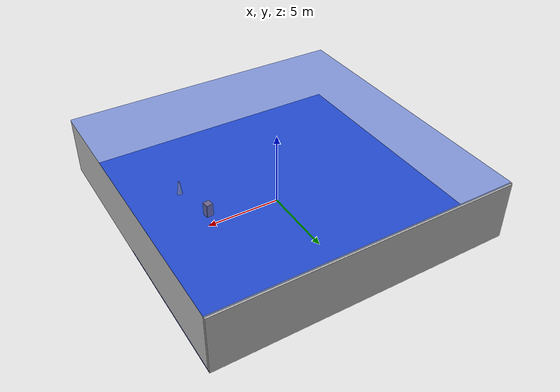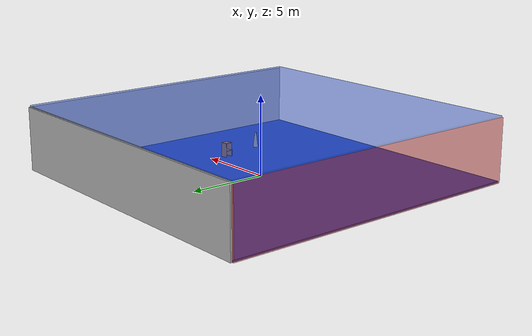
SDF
<sdf version="1.4">
 <world name="default">
  <physics type="ode">
   <max_step_size>0.001</max_step_size>
   <real_time_factor>1</real_time_factor>
   <real_time_update_rate>1000</real_time_update_rate>
   <gravity>0 0 -9.8</gravity>
  </physics>
  <scene><ambient>0.4 0.4 0.4 1</ambient><background>0.7 0.7 0.7 1</background><shadows>1</shadows></scene>
  <model name="Surrounding">
   <static>1</static>
   <link name="Ceiling">
    <collision name="Ceiling_Collision"><geometry><box><size>20 20 0.1</size></box></geometry></collision>
    <visual name="Ceiling_Visual">
     <geometry><box><size>20 20 0.1</size></box></geometry>
     <material>
      <script><uri>file://media/materials/scripts/gazebo.material</uri><name>Gazebo/BlueTransparent</name></script>
     </material>
    </visual>
    <pose>0 0 4.05 0 0 0</pose>
   </link>
   <link name="Wall_South">
    <collision name="Wall_South_Collision">
     <geometry><box><size>20 0 4</size></box></geometry>
     <pose>0 0 2 0 -0 0</pose>
    </collision>
    <visual name="Wall_South_Visual">
     <pose>0 0 2 0 -0 0</pose>
     <geometry><box><size>20 0 4</size></box></geometry>
     <material>
      <script>
       <uri>file://media/materials/scripts/gazebo.material</uri>
       <name>Gazebo/YellowTransparent</name>
      </script>
     </material>
    </visual>
    <velocity_decay><linear>0</linear><angular>0</angular></velocity_decay>
    <pose>0 -10 0 0 -0 0</pose>
   </link>
   <link name="Wall_East">
    <collision name="Wall_21_Collision">
     <geometry><box><size>20 0 4</size></box></geometry>
     <pose>0 0 2 0 -0 0</pose>
    </collision>
    <visual name="Wall_21_Visual">
     <pose>0 0 2 0 -0 0</pose>
     <geometry><box><size>20 0 4</size></box></geometry>
     <material>
      <script><uri>file://media/materials/scripts/gazebo.material</uri><name>Gazebo/WhiteGlow</name></script>
     </material>
    </visual>
    <velocity_decay><linear>0</linear><angular>0</angular></velocity_decay>
    <pose>10 0 0 0 -0 1.5708</pose>
   </link>
   <link name="Wall_North">
    <collision name="Wall_22_Collision">
     <geometry><box><size>20 0.2 4</size></box></geometry>
     <pose>0 0 2 0 -0 0</pose>
    </collision>
    <visual name="Wall_22_Visual">
     <pose>0 0 2 0 -0 0</pose>
     <geometry><box><size>20 0.2 4</size></box></geometry>
     <material>
      <script><uri>file://media/materials/scripts/gazebo.material</uri><name>Gazebo/LightOn</name></script>
     </material>
    </visual>
    <velocity_decay><linear>0</linear><angular>0</angular></velocity_decay>
    <pose>0 10 0 0 -0 0</pose>
   </link>
   <link name="Wall_West">
    <collision name="Wall_23_Collision">
     <geometry><box><size>20 0.2 4</size></box></geometry>
     <pose>0 0 2 0 -0 0</pose>
    </collision>
    <visual name="Wall_23_Visual">
     <pose>0 0 2 0 -0 0</pose>
     <geometry><box><size>20 0.2 4</size></box></geometry>
     <material>
      <script><uri>file://media/materials/scripts/gazebo.material</uri><name>Gazebo/RedTransparent</name></script>
     </material>
    </visual>
    <velocity_decay><linear>0</linear><angular>0</angular></velocity_decay>
    <pose>-10 0 0 0 0 -1.5708</pose>
   </link>
   <link name="Ground_link">
    <collision name="collision">
     <pose>0 0 .05 0 -0 0</pose>
     <geometry><box><size>20 20 0.1</size></box></geometry>
    </collision>
    <visual name="visual">
     <pose>0 0 .05 0 -0 0</pose>
     <geometry><box><size>20 20 0.1</size></box></geometry>
     <material>
      <script><uri>file://media/materials/scripts/gazebo.material</uri><name>Gazebo/Blue</name></script>
     </material>
    </visual>
   </link>
   <static>1</static>
  </model>
  <spherical_coordinates>
   <surface_model>EARTH_WGS84</surface_model>
   <latitude_deg>0</latitude_deg>
   <longitude_deg>0</longitude_deg>
   <elevation>0</elevation>
   <heading_deg>0</heading_deg>
  </spherical_coordinates>
  <light name="lightball_0" type="diffuse">
   <diffuse>0.8 0.8 0.8 1</diffuse>
   <specular>0.2 0.2 0.2 1</specular>
   <attenuation>
    <range>100</range>
    <constant>0.7</constant>
    <linear>0.01</linear>
    <quadratic>0.001</quadratic>
   </attenuation>
   <direction>-0.5 0.1 -0.9</direction>
   <pose>3.92381407432 2.53243543537 2.89690211426 0 0 0</pose>
  </light>
  <light name="lightball_1" type="diffuse">
   <diffuse>0.8 0.8 0.8 1</diffuse>
   <specular>0.2 0.2 0.2 1</specular>
   <attenuation>
    <range>100</range>
    <constant>0.7</constant>
    <linear>0.01</linear>
    <quadratic>0.001</quadratic>
   </attenuation>
   <direction>-0.5 0.1 -0.9</direction>
   <pose>-2.29437132207 0.0429029553055 0.505600249447 0 0 0</pose>
  </light>
  <light name="lightball_2" type="diffuse">
   <diffuse>0.8 0.8 0.8 1</diffuse>
   <specular>0.2 0.2 0.2 1</specular>
   <attenuation>
    <range>100</range>
    <constant>0.7</constant>
    <linear>0.01</linear>
    <quadratic>0.001</quadratic>
   </attenuation>
   <direction>-0.5 0.1 -0.9</direction>
   <pose>-7.1972753754 2.06799933328 2.53956117369 0 0 0</pose>
  </light>
  <light name="lightball_3" type="diffuse">
   <diffuse>0.8 0.8 0.8 1</diffuse>
   <specular>0.2 0.2 0.2 1</specular>
   <attenuation>
    <range>100</range>
    <constant>0.7</constant>
    <linear>0.01</linear>
    <quadratic>0.001</quadratic>
   </attenuation>
   <direction>-0.5 0.1 -0.9</direction>
   <pose>6.28921307335 3.07113783617 1.84275157559 0 0 0</pose>
  </light>
  <light name="lightball_4" type="diffuse">
   <diffuse>0.8 0.8 0.8 1</diffuse>
   <specular>0.2 0.2 0.2 1</specular>
   <attenuation>
    <range>100</range>
    <constant>0.7</constant>
    <linear>0.01</linear>
    <quadratic>0.001</quadratic>
   </attenuation>
   <direction>-0.5 0.1 -0.9</direction>
   <pose>-1.84777798777 6.35639570652 3.07075418962 0 0 0</pose>
  </light>
  <light name="lightball_5" type="diffuse">
   <diffuse>0.8 0.8 0.8 1</diffuse>
   <specular>0.2 0.2 0.2 1</specular>
   <attenuation>
    <range>100</range>
    <constant>0.7</constant>
    <linear>0.01</linear>
    <quadratic>0.001</quadratic>
   </attenuation>
   <direction>-0.5 0.1 -0.9</direction>
   <pose>3.90863896697 -9.59203885547 1.36070169699 0 0 0</pose>
  </light>
  <include>
   <uri>model://construction_cone</uri>
   <pose>5.23837043924 -3.85398717652 0 0 0 2.8300899957</pose>
  </include>
  <include><uri>model://cabinet</uri><pose>4.57065174629 -0.90873150872 0 0 0 0.112535575263</pose></include>
 </world>
</sdf>

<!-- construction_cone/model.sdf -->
<sdf version="1.5">
  <model name="Construction Cone">
    <link name="link">
      <collision name="collision">
        <geometry>
          <mesh>
            <scale>10 10 10</scale>
            <uri>file://isr-testbed/construction_cone/meshes/construction_cone.dae</uri>
          </mesh>
        </geometry>
      </collision>
      <visual name="visual">
        <geometry>
          <mesh>
            <scale>10 10 10</scale>
            <uri>file://isr-testbed/construction_cone/meshes/construction_cone.dae</uri>
          </mesh>
        </geometry>
      </visual>
    </link>
  </model>
</sdf>

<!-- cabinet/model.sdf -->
<sdf version="1.5">
  <model name="cabinet">
    <static>true</static>
    <link name="cabinet_bottom_plate">
      <inertial>
        <pose>0 0 -1 0 0 0</pose>
        <inertia>
          <ixx>2.050000</ixx>
          <ixy>0</ixy>
          <ixz>0</ixz>
          <iyy>2.050000</iyy>
          <iyz>0</iyz>
          <izz>2.050000</izz>
        </inertia>
        <mass>25.000000</mass>
      </inertial>
      <collision name="cabinet_bottom_plate_geom">
        <pose>0 0 0.010000 0 0 0</pose>
        <geometry>
          <box>
            <size>0.450000 0.450000 0.020000</size>
          </box>
        </geometry>
      </collision>
      <visual name="cabinet_bottom_plate_geom_visual">
        <pose>0 0 0.010000 0 0 0</pose>
        <geometry>
          <box>
            <size>0.450000 0.450000 0.020000</size>
          </box>
        </geometry>
        <material>
          <script>
            <uri>model://media/materials/scripts/gazebo.material</uri>
            <name>Gazebo/Wood</name>
          </script>
        </material>
      </visual>
      <collision name="cabinet_bottom_plate_geom_cabinet_back_plate">
        <pose>0.235000 0 0.510000 0 0 0</pose>
        <geometry>
          <box>
            <size>0.020000 0.450000 1.020000</size>
          </box>
        </geometry>
      </collision>
      <visual name="cabinet_bottom_plate_geom_cabinet_back_plate_visual">
        <pose>0.235000 0 0.510000 0 0 0</pose>
        <geometry>
          <box>
            <size>0.020000 0.450000 1.020000</size>
          </box>
        </geometry>
        <material>
          <script>
            <uri>model://media/materials/scripts/gazebo.material</uri>
            <name>Gazebo/Wood</name>
          </script>
        </material>
      </visual>
      <collision name="cabinet_bottom_plate_geom_cabinet_left_plate">
        <pose>0 0.235000 0.510000 0 0 0</pose>
        <geometry>
          <box>
            <size>0.450000 0.020000 1.020000</size>
          </box>
        </geometry>
      </collision>
      <visual name="cabinet_bottom_plate_geom_cabinet_left_plate_visual">
        <pose>0 0.235000 0.510000 0 0 0</pose>
        <geometry>
          <box>
            <size>0.450000 0.020000 1.020000</size>
          </box>
        </geometry>
        <material>
          <script>
            <uri>model://media/materials/scripts/gazebo.material</uri>
            <name>Gazebo/Wood</name>
          </script>
        </material>
      </visual>
      <collision name="cabinet_bottom_plate_geom_cabinet_middle_plate">
        <pose>0 0 0.510000 0 0 0</pose>
        <geometry>
          <box>
            <size>0.450000 0.450000 0.020000</size>
          </box>
        </geometry>
      </collision>
      <visual name="cabinet_bottom_plate_geom_cabinet_middle_plate_visual">
        <pose>0 0 0.510000 0 0 0</pose>
        <geometry>
          <box>
            <size>0.450000 0.450000 0.020000</size>
          </box>
        </geometry>
        <material>
          <script>
            <uri>model://media/materials/scripts/gazebo.material</uri>
            <name>Gazebo/Wood</name>
          </script>
        </material>
      </visual>
      <collision name="cabinet_bottom_plate_geom_cabinet_right_plate">
        <pose>0 -0.235000 0.510000 0 0 0</pose>
        <geometry>
          <box>
            <size>0.450000 0.020000 1.020000</size>
          </box>
        </geometry>
      </collision>
      <visual name="cabinet_bottom_plate_geom_cabinet_right_plate_visual">
        <pose>0 -0.235000 0.510000 0 0 0</pose>
        <geometry>
          <box>
            <size>0.450000 0.020000 1.020000</size>
          </box>
        </geometry>
        <material>
          <script>
            <uri>model://media/materials/scripts/gazebo.material</uri>
            <name>Gazebo/Wood</name>
          </script>
        </material>
      </visual>
      <collision name="cabinet_bottom_plate_geom_cabinet_top_plate">
        <pose>0 0 1.010000 0 0 0</pose>
        <geometry>
          <box>
            <size>0.450000 0.450000 0.020000</size>
          </box>
        </geometry>
      </collision>
      <visual name="cabinet_bottom_plate_geom_cabinet_top_plate_visual">
        <pose>0 0 1.010000 0 0 0</pose>
        <geometry>
          <box>
            <size>0.450000 0.450000 0.020000</size>
          </box>
        </geometry>
        <material>
          <script>
            <uri>model://media/materials/scripts/gazebo.material</uri>
            <name>Gazebo/Wood</name>
          </script>
        </material>
      </visual>
    </link>
  </model>
</sdf>
